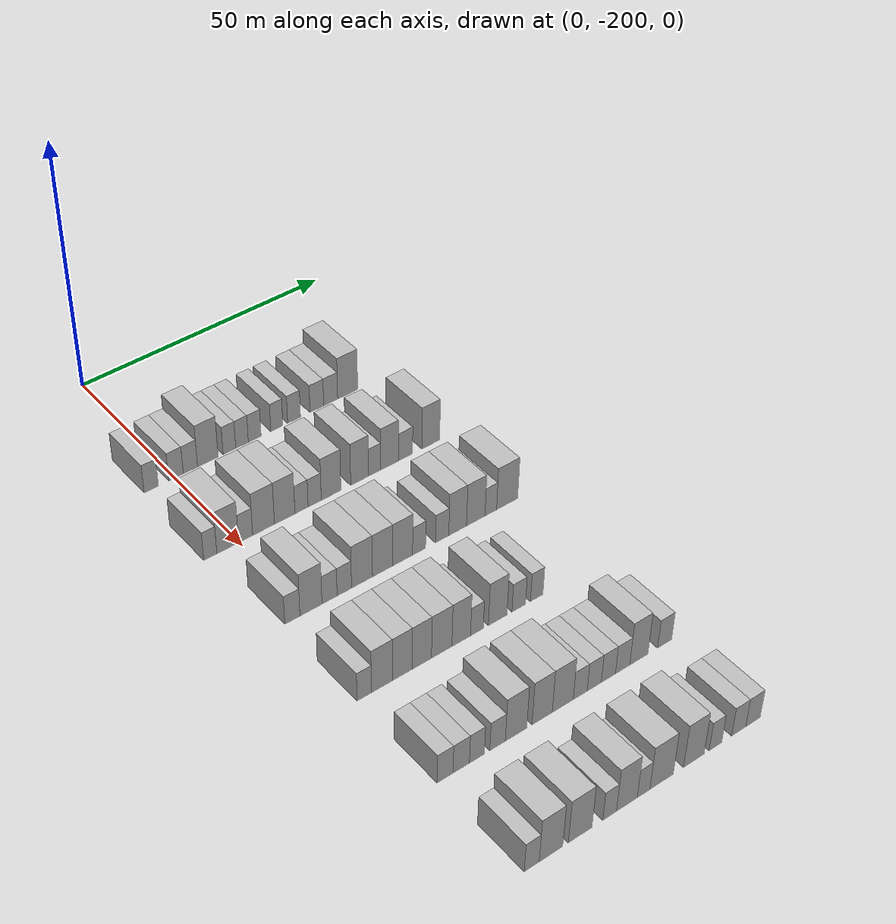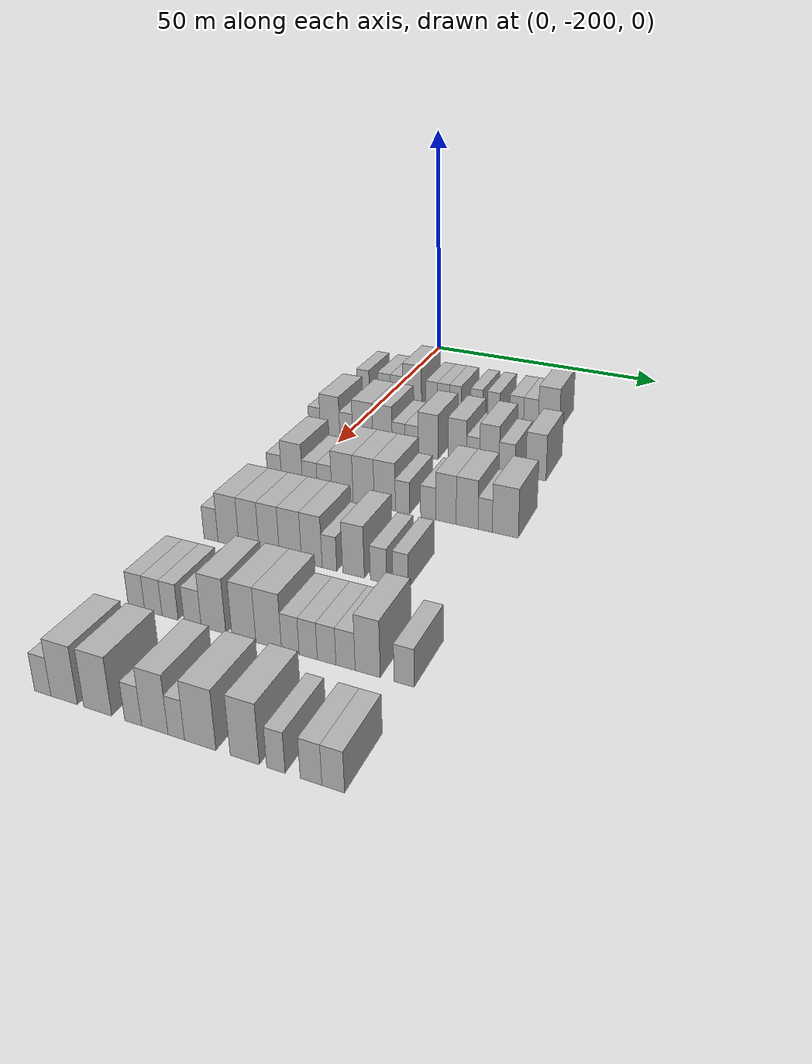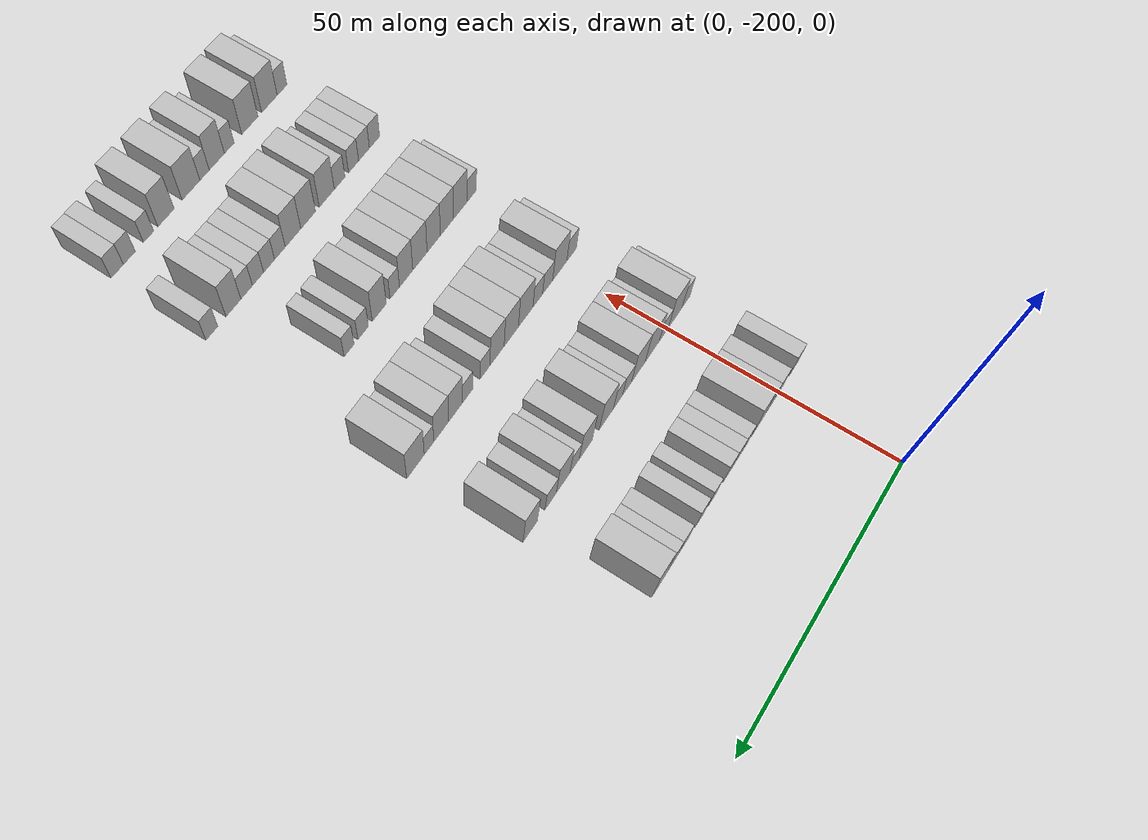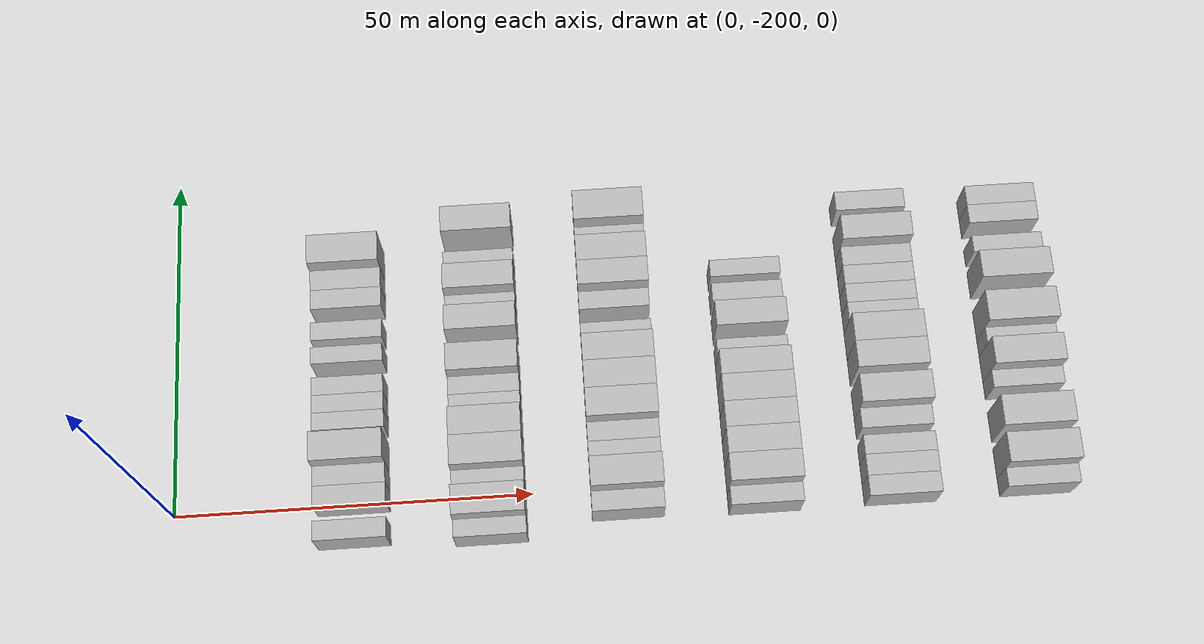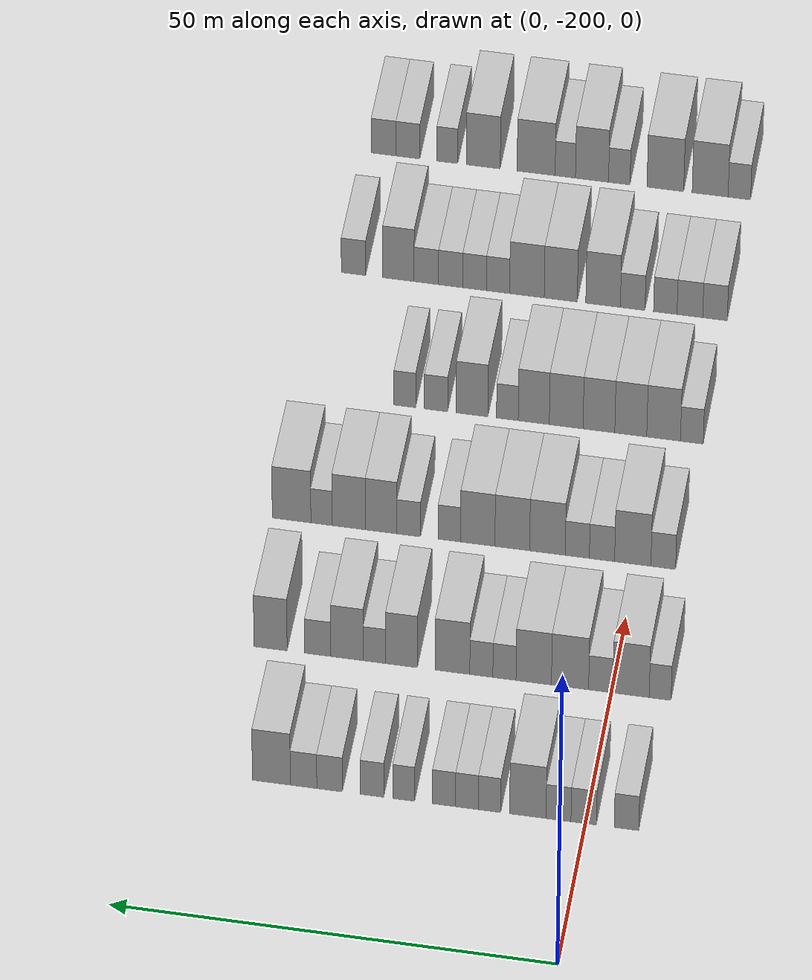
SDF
<sdf version="1.6">
 <world name="default">
  <model name="building_35">
   <static>1</static>
   <pose>25.0000 -204.6063 0 0.000000 0.000000 0.000000</pose>
   <link name="link">
    <pose>0 0 3.00 0 0 0</pose>
    <collision name="collision"><geometry><box><size>10.0000 2.7494 6.0000</size></box></geometry></collision>
    <visual name="visual">
     <cast_shadows>0</cast_shadows>
     <geometry><box><size>10.0000 2.7494 6.0000</size></box></geometry>
     <material>
      <script>
       <uri>model://HANNAS_wall/materials/scripts</uri>
       <uri>model://HANNAS_wall/materials/textures</uri>
       <name>vrc/HANNAS_wall</name>
      </script>
     </material>
    </visual>
   </link>
  </model>
  <model name="building_36">
   <static>1</static>
   <pose>25.0000 -199.8034 0 0.000000 0.000000 0.000000</pose>
   <link name="link">
    <pose>0 0 3.00 0 0 0</pose>
    <collision name="collision"><geometry><box><size>10.0000 2.8564 6.0000</size></box></geometry></collision>
    <visual name="visual">
     <cast_shadows>0</cast_shadows>
     <geometry><box><size>10.0000 2.8564 6.0000</size></box></geometry>
     <material>
      <script>
       <uri>model://HANNAS_wall/materials/scripts</uri>
       <uri>model://HANNAS_wall/materials/textures</uri>
       <name>vrc/HANNAS_wall</name>
      </script>
     </material>
    </visual>
   </link>
  </model>
  <model name="building_37">
   <static>1</static>
   <pose>25.0000 -196.9749 0 0.000000 0.000000 0.000000</pose>
   <link name="link">
    <pose>0 0 3.00 0 0 0</pose>
    <collision name="collision"><geometry><box><size>10.0000 2.8006 6.0000</size></box></geometry></collision>
    <visual name="visual">
     <cast_shadows>0</cast_shadows>
     <geometry><box><size>10.0000 2.8006 6.0000</size></box></geometry>
     <material>
      <script>
       <uri>model://HANNAS_wall/materials/scripts</uri>
       <uri>model://HANNAS_wall/materials/textures</uri>
       <name>vrc/HANNAS_wall</name>
      </script>
     </material>
    </visual>
   </link>
  </model>
  <model name="building_38">
   <static>1</static>
   <pose>25.0000 -193.5303 0 0.000000 0.000000 0.000000</pose>
   <link name="link">
    <pose>0 0 4.50 0 0 0</pose>
    <collision name="collision"><geometry><box><size>10.0000 4.0886 9.0000</size></box></geometry></collision>
    <visual name="visual">
     <cast_shadows>0</cast_shadows>
     <geometry><box><size>10.0000 4.0886 9.0000</size></box></geometry>
     <material>
      <script>
       <uri>model://HANNAS_wall/materials/scripts</uri>
       <uri>model://HANNAS_wall/materials/textures</uri>
       <name>vrc/HANNAS_wall</name>
      </script>
     </material>
    </visual>
   </link>
  </model>
  <model name="building_39">
   <static>1</static>
   <pose>25.0000 -189.2221 0 0.000000 0.000000 0.000000</pose>
   <link name="link">
    <pose>0 0 3.00 0 0 0</pose>
    <collision name="collision"><geometry><box><size>10.0000 2.5278 6.0000</size></box></geometry></collision>
    <visual name="visual">
     <cast_shadows>0</cast_shadows>
     <geometry><box><size>10.0000 2.5278 6.0000</size></box></geometry>
     <material>
      <script>
       <uri>model://HANNAS_wall/materials/scripts</uri>
       <uri>model://HANNAS_wall/materials/textures</uri>
       <name>vrc/HANNAS_wall</name>
      </script>
     </material>
    </visual>
   </link>
  </model>
  <model name="building_40">
   <static>1</static>
   <pose>25.0000 -186.6805 0 0.000000 0.000000 0.000000</pose>
   <link name="link">
    <pose>0 0 3.00 0 0 0</pose>
    <collision name="collision"><geometry><box><size>10.0000 2.5553 6.0000</size></box></geometry></collision>
    <visual name="visual">
     <cast_shadows>0</cast_shadows>
     <geometry><box><size>10.0000 2.5553 6.0000</size></box></geometry>
     <material>
      <script>
       <uri>model://HANNAS_wall/materials/scripts</uri>
       <uri>model://HANNAS_wall/materials/textures</uri>
       <name>vrc/HANNAS_wall</name>
      </script>
     </material>
    </visual>
   </link>
  </model>
  <model name="building_41">
   <static>1</static>
   <pose>25.0000 -184.1027 0 0.000000 0.000000 0.000000</pose>
   <link name="link">
    <pose>0 0 3.00 0 0 0</pose>
    <collision name="collision"><geometry><box><size>10.0000 2.6003 6.0000</size></box></geometry></collision>
    <visual name="visual">
     <cast_shadows>0</cast_shadows>
     <geometry><box><size>10.0000 2.6003 6.0000</size></box></geometry>
     <material>
      <script>
       <uri>model://HANNAS_wall/materials/scripts</uri>
       <uri>model://HANNAS_wall/materials/textures</uri>
       <name>vrc/HANNAS_wall</name>
      </script>
     </material>
    </visual>
   </link>
  </model>
  <model name="building_42">
   <static>1</static>
   <pose>25.0000 -179.5608 0 0.000000 0.000000 0.000000</pose>
   <link name="link">
    <pose>0 0 3.00 0 0 0</pose>
    <collision name="collision"><geometry><box><size>10.0000 2.4836 6.0000</size></box></geometry></collision>
    <visual name="visual">
     <cast_shadows>0</cast_shadows>
     <geometry><box><size>10.0000 2.4836 6.0000</size></box></geometry>
     <material>
      <script>
       <uri>model://HANNAS_wall/materials/scripts</uri>
       <uri>model://HANNAS_wall/materials/textures</uri>
       <name>vrc/HANNAS_wall</name>
      </script>
     </material>
    </visual>
   </link>
  </model>
  <model name="building_43">
   <static>1</static>
   <pose>25.0000 -175.9836 0 0.000000 0.000000 0.000000</pose>
   <link name="link">
    <pose>0 0 3.00 0 0 0</pose>
    <collision name="collision"><geometry><box><size>10.0000 2.6708 6.0000</size></box></geometry></collision>
    <visual name="visual">
     <cast_shadows>0</cast_shadows>
     <geometry><box><size>10.0000 2.6708 6.0000</size></box></geometry>
     <material>
      <script>
       <uri>model://HANNAS_wall/materials/scripts</uri>
       <uri>model://HANNAS_wall/materials/textures</uri>
       <name>vrc/HANNAS_wall</name>
      </script>
     </material>
    </visual>
   </link>
  </model>
  <model name="building_44">
   <static>1</static>
   <pose>25.0000 -171.2106 0 0.000000 0.000000 0.000000</pose>
   <link name="link">
    <pose>0 0 3.00 0 0 0</pose>
    <collision name="collision"><geometry><box><size>10.0000 2.8751 6.0000</size></box></geometry></collision>
    <visual name="visual">
     <cast_shadows>0</cast_shadows>
     <geometry><box><size>10.0000 2.8751 6.0000</size></box></geometry>
     <material>
      <script>
       <uri>model://HANNAS_wall/materials/scripts</uri>
       <uri>model://HANNAS_wall/materials/textures</uri>
       <name>vrc/HANNAS_wall</name>
      </script>
     </material>
    </visual>
   </link>
  </model>
  <model name="building_45">
   <static>1</static>
   <pose>25.0000 -168.2817 0 0.000000 0.000000 0.000000</pose>
   <link name="link">
    <pose>0 0 3.00 0 0 0</pose>
    <collision name="collision"><geometry><box><size>10.0000 2.9826 6.0000</size></box></geometry></collision>
    <visual name="visual">
     <cast_shadows>0</cast_shadows>
     <geometry><box><size>10.0000 2.9826 6.0000</size></box></geometry>
     <material>
      <script>
       <uri>model://HANNAS_wall/materials/scripts</uri>
       <uri>model://HANNAS_wall/materials/textures</uri>
       <name>vrc/HANNAS_wall</name>
      </script>
     </material>
    </visual>
   </link>
  </model>
  <model name="building_46">
   <static>1</static>
   <pose>25.0000 -164.6508 0 0.000000 0.000000 0.000000</pose>
   <link name="link">
    <pose>0 0 4.50 0 0 0</pose>
    <collision name="collision"><geometry><box><size>10.0000 4.2792 9.0000</size></box></geometry></collision>
    <visual name="visual">
     <cast_shadows>0</cast_shadows>
     <geometry><box><size>10.0000 4.2792 9.0000</size></box></geometry>
     <material>
      <script>
       <uri>model://HANNAS_wall/materials/scripts</uri>
       <uri>model://HANNAS_wall/materials/textures</uri>
       <name>vrc/HANNAS_wall</name>
      </script>
     </material>
    </visual>
   </link>
  </model>
  <model name="building_206">
   <static>1</static>
   <pose>44.0000 -205.5097 0 0.000000 0.000000 0.000000</pose>
   <link name="link">
    <pose>0 0 3.00 0 0 0</pose>
    <collision name="collision"><geometry><box><size>10.0000 2.4755 6.0000</size></box></geometry></collision>
    <visual name="visual">
     <cast_shadows>0</cast_shadows>
     <geometry><box><size>10.0000 2.4755 6.0000</size></box></geometry>
     <material>
      <script>
       <uri>model://HANNAS_wall/materials/scripts</uri>
       <uri>model://HANNAS_wall/materials/textures</uri>
       <name>vrc/HANNAS_wall</name>
      </script>
     </material>
    </visual>
   </link>
  </model>
  <model name="building_207">
   <static>1</static>
   <pose>44.0000 -202.2036 0 0.000000 0.000000 0.000000</pose>
   <link name="link">
    <pose>0 0 4.50 0 0 0</pose>
    <collision name="collision"><geometry><box><size>10.0000 4.1369 9.0000</size></box></geometry></collision>
    <visual name="visual">
     <cast_shadows>0</cast_shadows>
     <geometry><box><size>10.0000 4.1369 9.0000</size></box></geometry>
     <material>
      <script>
       <uri>model://HANNAS_wall/materials/scripts</uri>
       <uri>model://HANNAS_wall/materials/textures</uri>
       <name>vrc/HANNAS_wall</name>
      </script>
     </material>
    </visual>
   </link>
  </model>
  <model name="building_208">
   <static>1</static>
   <pose>44.0000 -198.7699 0 0.000000 0.000000 0.000000</pose>
   <link name="link">
    <pose>0 0 3.00 0 0 0</pose>
    <collision name="collision"><geometry><box><size>10.0000 2.7305 6.0000</size></box></geometry></collision>
    <visual name="visual">
     <cast_shadows>0</cast_shadows>
     <geometry><box><size>10.0000 2.7305 6.0000</size></box></geometry>
     <material>
      <script>
       <uri>model://HANNAS_wall/materials/scripts</uri>
       <uri>model://HANNAS_wall/materials/textures</uri>
       <name>vrc/HANNAS_wall</name>
      </script>
     </material>
    </visual>
   </link>
  </model>
  <model name="building_209">
   <static>1</static>
   <pose>44.0000 -195.2941 0 0.000000 0.000000 0.000000</pose>
   <link name="link">
    <pose>0 0 4.50 0 0 0</pose>
    <collision name="collision"><geometry><box><size>10.0000 4.2212 9.0000</size></box></geometry></collision>
    <visual name="visual">
     <cast_shadows>0</cast_shadows>
     <geometry><box><size>10.0000 4.2212 9.0000</size></box></geometry>
     <material>
      <script>
       <uri>model://HANNAS_wall/materials/scripts</uri>
       <uri>model://HANNAS_wall/materials/textures</uri>
       <name>vrc/HANNAS_wall</name>
      </script>
     </material>
    </visual>
   </link>
  </model>
  <model name="building_210">
   <static>1</static>
   <pose>44.0000 -191.1733 0 0.000000 0.000000 0.000000</pose>
   <link name="link">
    <pose>0 0 4.50 0 0 0</pose>
    <collision name="collision"><geometry><box><size>10.0000 4.0203 9.0000</size></box></geometry></collision>
    <visual name="visual">
     <cast_shadows>0</cast_shadows>
     <geometry><box><size>10.0000 4.0203 9.0000</size></box></geometry>
     <material>
      <script>
       <uri>model://HANNAS_wall/materials/scripts</uri>
       <uri>model://HANNAS_wall/materials/textures</uri>
       <name>vrc/HANNAS_wall</name>
      </script>
     </material>
    </visual>
   </link>
  </model>
  <model name="building_211">
   <static>1</static>
   <pose>44.0000 -187.8496 0 0.000000 0.000000 0.000000</pose>
   <link name="link">
    <pose>0 0 3.00 0 0 0</pose>
    <collision name="collision"><geometry><box><size>10.0000 2.6270 6.0000</size></box></geometry></collision>
    <visual name="visual">
     <cast_shadows>0</cast_shadows>
     <geometry><box><size>10.0000 2.6270 6.0000</size></box></geometry>
     <material>
      <script>
       <uri>model://HANNAS_wall/materials/scripts</uri>
       <uri>model://HANNAS_wall/materials/textures</uri>
       <name>vrc/HANNAS_wall</name>
      </script>
     </material>
    </visual>
   </link>
  </model>
  <model name="building_212">
   <static>1</static>
   <pose>44.0000 -185.2249 0 0.000000 0.000000 0.000000</pose>
   <link name="link">
    <pose>0 0 3.00 0 0 0</pose>
    <collision name="collision"><geometry><box><size>10.0000 2.6224 6.0000</size></box></geometry></collision>
    <visual name="visual">
     <cast_shadows>0</cast_shadows>
     <geometry><box><size>10.0000 2.6224 6.0000</size></box></geometry>
     <material>
      <script>
       <uri>model://HANNAS_wall/materials/scripts</uri>
       <uri>model://HANNAS_wall/materials/textures</uri>
       <name>vrc/HANNAS_wall</name>
      </script>
     </material>
    </visual>
   </link>
  </model>
  <model name="building_213">
   <static>1</static>
   <pose>44.0000 -181.9339 0 0.000000 0.000000 0.000000</pose>
   <link name="link">
    <pose>0 0 4.50 0 0 0</pose>
    <collision name="collision"><geometry><box><size>10.0000 3.9596 9.0000</size></box></geometry></collision>
    <visual name="visual">
     <cast_shadows>0</cast_shadows>
     <geometry><box><size>10.0000 3.9596 9.0000</size></box></geometry>
     <material>
      <script>
       <uri>model://HANNAS_wall/materials/scripts</uri>
       <uri>model://HANNAS_wall/materials/textures</uri>
       <name>vrc/HANNAS_wall</name>
      </script>
     </material>
    </visual>
   </link>
  </model>
  <model name="building_214">
   <static>1</static>
   <pose>44.0000 -176.1424 0 0.000000 0.000000 0.000000</pose>
   <link name="link">
    <pose>0 0 4.50 0 0 0</pose>
    <collision name="collision"><geometry><box><size>10.0000 3.6235 9.0000</size></box></geometry></collision>
    <visual name="visual">
     <cast_shadows>0</cast_shadows>
     <geometry><box><size>10.0000 3.6235 9.0000</size></box></geometry>
     <material>
      <script>
       <uri>model://HANNAS_wall/materials/scripts</uri>
       <uri>model://HANNAS_wall/materials/textures</uri>
       <name>vrc/HANNAS_wall</name>
      </script>
     </material>
    </visual>
   </link>
  </model>
  <model name="building_215">
   <static>1</static>
   <pose>44.0000 -173.0582 0 0.000000 0.000000 0.000000</pose>
   <link name="link">
    <pose>0 0 3.00 0 0 0</pose>
    <collision name="collision"><geometry><box><size>10.0000 2.5449 6.0000</size></box></geometry></collision>
    <visual name="visual">
     <cast_shadows>0</cast_shadows>
     <geometry><box><size>10.0000 2.5449 6.0000</size></box></geometry>
     <material>
      <script>
       <uri>model://HANNAS_wall/materials/scripts</uri>
       <uri>model://HANNAS_wall/materials/textures</uri>
       <name>vrc/HANNAS_wall</name>
      </script>
     </material>
    </visual>
   </link>
  </model>
  <model name="building_216">
   <static>1</static>
   <pose>44.0000 -169.9406 0 0.000000 0.000000 0.000000</pose>
   <link name="link">
    <pose>0 0 4.50 0 0 0</pose>
    <collision name="collision"><geometry><box><size>10.0000 3.6903 9.0000</size></box></geometry></collision>
    <visual name="visual">
     <cast_shadows>0</cast_shadows>
     <geometry><box><size>10.0000 3.6903 9.0000</size></box></geometry>
     <material>
      <script>
       <uri>model://HANNAS_wall/materials/scripts</uri>
       <uri>model://HANNAS_wall/materials/textures</uri>
       <name>vrc/HANNAS_wall</name>
      </script>
     </material>
    </visual>
   </link>
  </model>
  <model name="building_217">
   <static>1</static>
   <pose>44.0000 -166.6025 0 0.000000 0.000000 0.000000</pose>
   <link name="link">
    <pose>0 0 3.00 0 0 0</pose>
    <collision name="collision"><geometry><box><size>10.0000 2.9859 6.0000</size></box></geometry></collision>
    <visual name="visual">
     <cast_shadows>0</cast_shadows>
     <geometry><box><size>10.0000 2.9859 6.0000</size></box></geometry>
     <material>
      <script>
       <uri>model://HANNAS_wall/materials/scripts</uri>
       <uri>model://HANNAS_wall/materials/textures</uri>
       <name>vrc/HANNAS_wall</name>
      </script>
     </material>
    </visual>
   </link>
  </model>
  <model name="building_218">
   <static>1</static>
   <pose>44.0000 -161.2229 0 0.000000 0.000000 0.000000</pose>
   <link name="link">
    <pose>0 0 4.50 0 0 0</pose>
    <collision name="collision"><geometry><box><size>10.0000 3.7732 9.0000</size></box></geometry></collision>
    <visual name="visual">
     <cast_shadows>0</cast_shadows>
     <geometry><box><size>10.0000 3.7732 9.0000</size></box></geometry>
     <material>
      <script>
       <uri>model://HANNAS_wall/materials/scripts</uri>
       <uri>model://HANNAS_wall/materials/textures</uri>
       <name>vrc/HANNAS_wall</name>
      </script>
     </material>
    </visual>
   </link>
  </model>
  <model name="building_382">
   <static>1</static>
   <pose>63.0000 -202.9997 0 0.000000 0.000000 0.000000</pose>
   <link name="link">
    <pose>0 0 3.00 0 0 0</pose>
    <collision name="collision"><geometry><box><size>10.0000 2.8282 6.0000</size></box></geometry></collision>
    <visual name="visual">
     <cast_shadows>0</cast_shadows>
     <geometry><box><size>10.0000 2.8282 6.0000</size></box></geometry>
     <material>
      <script>
       <uri>model://HANNAS_wall/materials/scripts</uri>
       <uri>model://HANNAS_wall/materials/textures</uri>
       <name>vrc/HANNAS_wall</name>
      </script>
     </material>
    </visual>
   </link>
  </model>
  <model name="building_383">
   <static>1</static>
   <pose>63.0000 -199.5063 0 0.000000 0.000000 0.000000</pose>
   <link name="link">
    <pose>0 0 4.50 0 0 0</pose>
    <collision name="collision"><geometry><box><size>10.0000 4.1586 9.0000</size></box></geometry></collision>
    <visual name="visual">
     <cast_shadows>0</cast_shadows>
     <geometry><box><size>10.0000 4.1586 9.0000</size></box></geometry>
     <material>
      <script>
       <uri>model://HANNAS_wall/materials/scripts</uri>
       <uri>model://HANNAS_wall/materials/textures</uri>
       <name>vrc/HANNAS_wall</name>
      </script>
     </material>
    </visual>
   </link>
  </model>
  <model name="building_384">
   <static>1</static>
   <pose>63.0000 -195.9821 0 0.000000 0.000000 0.000000</pose>
   <link name="link">
    <pose>0 0 3.00 0 0 0</pose>
    <collision name="collision"><geometry><box><size>10.0000 2.8899 6.0000</size></box></geometry></collision>
    <visual name="visual">
     <cast_shadows>0</cast_shadows>
     <geometry><box><size>10.0000 2.8899 6.0000</size></box></geometry>
     <material>
      <script>
       <uri>model://HANNAS_wall/materials/scripts</uri>
       <uri>model://HANNAS_wall/materials/textures</uri>
       <name>vrc/HANNAS_wall</name>
      </script>
     </material>
    </visual>
   </link>
  </model>
  <model name="building_385">
   <static>1</static>
   <pose>63.0000 -193.1538 0 0.000000 0.000000 0.000000</pose>
   <link name="link">
    <pose>0 0 3.00 0 0 0</pose>
    <collision name="collision"><geometry><box><size>10.0000 2.7665 6.0000</size></box></geometry></collision>
    <visual name="visual">
     <cast_shadows>0</cast_shadows>
     <geometry><box><size>10.0000 2.7665 6.0000</size></box></geometry>
     <material>
      <script>
       <uri>model://HANNAS_wall/materials/scripts</uri>
       <uri>model://HANNAS_wall/materials/textures</uri>
       <name>vrc/HANNAS_wall</name>
      </script>
     </material>
    </visual>
   </link>
  </model>
  <model name="building_386">
   <static>1</static>
   <pose>63.0000 -189.7286 0 0.000000 0.000000 0.000000</pose>
   <link name="link">
    <pose>0 0 4.50 0 0 0</pose>
    <collision name="collision"><geometry><box><size>10.0000 4.0840 9.0000</size></box></geometry></collision>
    <visual name="visual">
     <cast_shadows>0</cast_shadows>
     <geometry><box><size>10.0000 4.0840 9.0000</size></box></geometry>
     <material>
      <script>
       <uri>model://HANNAS_wall/materials/scripts</uri>
       <uri>model://HANNAS_wall/materials/textures</uri>
       <name>vrc/HANNAS_wall</name>
      </script>
     </material>
    </visual>
   </link>
  </model>
  <model name="building_387">
   <static>1</static>
   <pose>63.0000 -185.6949 0 0.000000 0.000000 0.000000</pose>
   <link name="link">
    <pose>0 0 4.50 0 0 0</pose>
    <collision name="collision"><geometry><box><size>10.0000 3.9833 9.0000</size></box></geometry></collision>
    <visual name="visual">
     <cast_shadows>0</cast_shadows>
     <geometry><box><size>10.0000 3.9833 9.0000</size></box></geometry>
     <material>
      <script>
       <uri>model://HANNAS_wall/materials/scripts</uri>
       <uri>model://HANNAS_wall/materials/textures</uri>
       <name>vrc/HANNAS_wall</name>
      </script>
     </material>
    </visual>
   </link>
  </model>
  <model name="building_388">
   <static>1</static>
   <pose>63.0000 -181.7345 0 0.000000 0.000000 0.000000</pose>
   <link name="link">
    <pose>0 0 4.50 0 0 0</pose>
    <collision name="collision"><geometry><box><size>10.0000 3.9375 9.0000</size></box></geometry></collision>
    <visual name="visual">
     <cast_shadows>0</cast_shadows>
     <geometry><box><size>10.0000 3.9375 9.0000</size></box></geometry>
     <material>
      <script>
       <uri>model://HANNAS_wall/materials/scripts</uri>
       <uri>model://HANNAS_wall/materials/textures</uri>
       <name>vrc/HANNAS_wall</name>
      </script>
     </material>
    </visual>
   </link>
  </model>
  <model name="building_389">
   <static>1</static>
   <pose>63.0000 -178.4641 0 0.000000 0.000000 0.000000</pose>
   <link name="link">
    <pose>0 0 3.00 0 0 0</pose>
    <collision name="collision"><geometry><box><size>10.0000 2.6033 6.0000</size></box></geometry></collision>
    <visual name="visual">
     <cast_shadows>0</cast_shadows>
     <geometry><box><size>10.0000 2.6033 6.0000</size></box></geometry>
     <material>
      <script>
       <uri>model://HANNAS_wall/materials/scripts</uri>
       <uri>model://HANNAS_wall/materials/textures</uri>
       <name>vrc/HANNAS_wall</name>
      </script>
     </material>
    </visual>
   </link>
  </model>
  <model name="building_390">
   <static>1</static>
   <pose>63.0000 -173.8086 0 0.000000 0.000000 0.000000</pose>
   <link name="link">
    <pose>0 0 3.00 0 0 0</pose>
    <collision name="collision"><geometry><box><size>10.0000 2.7077 6.0000</size></box></geometry></collision>
    <visual name="visual">
     <cast_shadows>0</cast_shadows>
     <geometry><box><size>10.0000 2.7077 6.0000</size></box></geometry>
     <material>
      <script>
       <uri>model://HANNAS_wall/materials/scripts</uri>
       <uri>model://HANNAS_wall/materials/textures</uri>
       <name>vrc/HANNAS_wall</name>
      </script>
     </material>
    </visual>
   </link>
  </model>
  <model name="building_391">
   <static>1</static>
   <pose>63.0000 -170.6334 0 0.000000 0.000000 0.000000</pose>
   <link name="link">
    <pose>0 0 4.50 0 0 0</pose>
    <collision name="collision"><geometry><box><size>10.0000 3.6428 9.0000</size></box></geometry></collision>
    <visual name="visual">
     <cast_shadows>0</cast_shadows>
     <geometry><box><size>10.0000 3.6428 9.0000</size></box></geometry>
     <material>
      <script>
       <uri>model://HANNAS_wall/materials/scripts</uri>
       <uri>model://HANNAS_wall/materials/textures</uri>
       <name>vrc/HANNAS_wall</name>
      </script>
     </material>
    </visual>
   </link>
  </model>
  <model name="building_392">
   <static>1</static>
   <pose>63.0000 -166.8922 0 0.000000 0.000000 0.000000</pose>
   <link name="link">
    <pose>0 0 4.50 0 0 0</pose>
    <collision name="collision"><geometry><box><size>10.0000 3.8395 9.0000</size></box></geometry></collision>
    <visual name="visual">
     <cast_shadows>0</cast_shadows>
     <geometry><box><size>10.0000 3.8395 9.0000</size></box></geometry>
     <material>
      <script>
       <uri>model://HANNAS_wall/materials/scripts</uri>
       <uri>model://HANNAS_wall/materials/textures</uri>
       <name>vrc/HANNAS_wall</name>
      </script>
     </material>
    </visual>
   </link>
  </model>
  <model name="building_393">
   <static>1</static>
   <pose>63.0000 -163.7552 0 0.000000 0.000000 0.000000</pose>
   <link name="link">
    <pose>0 0 3.00 0 0 0</pose>
    <collision name="collision"><geometry><box><size>10.0000 2.4346 6.0000</size></box></geometry></collision>
    <visual name="visual">
     <cast_shadows>0</cast_shadows>
     <geometry><box><size>10.0000 2.4346 6.0000</size></box></geometry>
     <material>
      <script>
       <uri>model://HANNAS_wall/materials/scripts</uri>
       <uri>model://HANNAS_wall/materials/textures</uri>
       <name>vrc/HANNAS_wall</name>
      </script>
     </material>
    </visual>
   </link>
  </model>
  <model name="building_394">
   <static>1</static>
   <pose>63.0000 -160.3153 0 0.000000 0.000000 0.000000</pose>
   <link name="link">
    <pose>0 0 4.50 0 0 0</pose>
    <collision name="collision"><geometry><box><size>10.0000 4.4451 9.0000</size></box></geometry></collision>
    <visual name="visual">
     <cast_shadows>0</cast_shadows>
     <geometry><box><size>10.0000 4.4451 9.0000</size></box></geometry>
     <material>
      <script>
       <uri>model://HANNAS_wall/materials/scripts</uri>
       <uri>model://HANNAS_wall/materials/textures</uri>
       <name>vrc/HANNAS_wall</name>
      </script>
     </material>
    </visual>
   </link>
  </model>
  <model name="building_558">
   <static>1</static>
   <pose>82.0000 -203.4405 0 0.000000 0.000000 0.000000</pose>
   <link name="link">
    <pose>0 0 3.00 0 0 0</pose>
    <collision name="collision"><geometry><box><size>10.0000 2.6350 6.0000</size></box></geometry></collision>
    <visual name="visual">
     <cast_shadows>0</cast_shadows>
     <geometry><box><size>10.0000 2.6350 6.0000</size></box></geometry>
     <material>
      <script>
       <uri>model://HANNAS_wall/materials/scripts</uri>
       <uri>model://HANNAS_wall/materials/textures</uri>
       <name>vrc/HANNAS_wall</name>
      </script>
     </material>
    </visual>
   </link>
  </model>
  <model name="building_559">
   <static>1</static>
   <pose>82.0000 -200.1745 0 0.000000 0.000000 0.000000</pose>
   <link name="link">
    <pose>0 0 4.50 0 0 0</pose>
    <collision name="collision"><geometry><box><size>10.0000 3.8970 9.0000</size></box></geometry></collision>
    <visual name="visual">
     <cast_shadows>0</cast_shadows>
     <geometry><box><size>10.0000 3.8970 9.0000</size></box></geometry>
     <material>
      <script>
       <uri>model://HANNAS_wall/materials/scripts</uri>
       <uri>model://HANNAS_wall/materials/textures</uri>
       <name>vrc/HANNAS_wall</name>
      </script>
     </material>
    </visual>
   </link>
  </model>
  <model name="building_560">
   <static>1</static>
   <pose>82.0000 -196.3777 0 0.000000 0.000000 0.000000</pose>
   <link name="link">
    <pose>0 0 4.50 0 0 0</pose>
    <collision name="collision"><geometry><box><size>10.0000 3.6964 9.0000</size></box></geometry></collision>
    <visual name="visual">
     <cast_shadows>0</cast_shadows>
     <geometry><box><size>10.0000 3.6964 9.0000</size></box></geometry>
     <material>
      <script>
       <uri>model://HANNAS_wall/materials/scripts</uri>
       <uri>model://HANNAS_wall/materials/textures</uri>
       <name>vrc/HANNAS_wall</name>
      </script>
     </material>
    </visual>
   </link>
  </model>
  <model name="building_561">
   <static>1</static>
   <pose>82.0000 -192.6930 0 0.000000 0.000000 0.000000</pose>
   <link name="link">
    <pose>0 0 4.50 0 0 0</pose>
    <collision name="collision"><geometry><box><size>10.0000 3.6731 9.0000</size></box></geometry></collision>
    <visual name="visual">
     <cast_shadows>0</cast_shadows>
     <geometry><box><size>10.0000 3.6731 9.0000</size></box></geometry>
     <material>
      <script>
       <uri>model://HANNAS_wall/materials/scripts</uri>
       <uri>model://HANNAS_wall/materials/textures</uri>
       <name>vrc/HANNAS_wall</name>
      </script>
     </material>
    </visual>
   </link>
  </model>
  <model name="building_562">
   <static>1</static>
   <pose>82.0000 -188.9013 0 0.000000 0.000000 0.000000</pose>
   <link name="link">
    <pose>0 0 4.50 0 0 0</pose>
    <collision name="collision"><geometry><box><size>10.0000 3.9103 9.0000</size></box></geometry></collision>
    <visual name="visual">
     <cast_shadows>0</cast_shadows>
     <geometry><box><size>10.0000 3.9103 9.0000</size></box></geometry>
     <material>
      <script>
       <uri>model://HANNAS_wall/materials/scripts</uri>
       <uri>model://HANNAS_wall/materials/textures</uri>
       <name>vrc/HANNAS_wall</name>
      </script>
     </material>
    </visual>
   </link>
  </model>
  <model name="building_563">
   <static>1</static>
   <pose>82.0000 -185.1446 0 0.000000 0.000000 0.000000</pose>
   <link name="link">
    <pose>0 0 4.50 0 0 0</pose>
    <collision name="collision"><geometry><box><size>10.0000 3.6032 9.0000</size></box></geometry></collision>
    <visual name="visual">
     <cast_shadows>0</cast_shadows>
     <geometry><box><size>10.0000 3.6032 9.0000</size></box></geometry>
     <material>
      <script>
       <uri>model://HANNAS_wall/materials/scripts</uri>
       <uri>model://HANNAS_wall/materials/textures</uri>
       <name>vrc/HANNAS_wall</name>
      </script>
     </material>
    </visual>
   </link>
  </model>
  <model name="building_564">
   <static>1</static>
   <pose>82.0000 -182.0852 0 0.000000 0.000000 0.000000</pose>
   <link name="link">
    <pose>0 0 3.00 0 0 0</pose>
    <collision name="collision"><geometry><box><size>10.0000 2.5156 6.0000</size></box></geometry></collision>
    <visual name="visual">
     <cast_shadows>0</cast_shadows>
     <geometry><box><size>10.0000 2.5156 6.0000</size></box></geometry>
     <material>
      <script>
       <uri>model://HANNAS_wall/materials/scripts</uri>
       <uri>model://HANNAS_wall/materials/textures</uri>
       <name>vrc/HANNAS_wall</name>
      </script>
     </material>
    </visual>
   </link>
  </model>
  <model name="building_565">
   <static>1</static>
   <pose>82.0000 -177.9901 0 0.000000 0.000000 0.000000</pose>
   <link name="link">
    <pose>0 0 4.50 0 0 0</pose>
    <collision name="collision"><geometry><box><size>10.0000 3.6747 9.0000</size></box></geometry></collision>
    <visual name="visual">
     <cast_shadows>0</cast_shadows>
     <geometry><box><size>10.0000 3.6747 9.0000</size></box></geometry>
     <material>
      <script>
       <uri>model://HANNAS_wall/materials/scripts</uri>
       <uri>model://HANNAS_wall/materials/textures</uri>
       <name>vrc/HANNAS_wall</name>
      </script>
     </material>
    </visual>
   </link>
  </model>
  <model name="building_566">
   <static>1</static>
   <pose>82.0000 -173.7946 0 0.000000 0.000000 0.000000</pose>
   <link name="link">
    <pose>0 0 3.00 0 0 0</pose>
    <collision name="collision"><geometry><box><size>10.0000 2.7164 6.0000</size></box></geometry></collision>
    <visual name="visual">
     <cast_shadows>0</cast_shadows>
     <geometry><box><size>10.0000 2.7164 6.0000</size></box></geometry>
     <material>
      <script>
       <uri>model://HANNAS_wall/materials/scripts</uri>
       <uri>model://HANNAS_wall/materials/textures</uri>
       <name>vrc/HANNAS_wall</name>
      </script>
     </material>
    </visual>
   </link>
  </model>
  <model name="building_567">
   <static>1</static>
   <pose>82.0000 -170.1763 0 0.000000 0.000000 0.000000</pose>
   <link name="link">
    <pose>0 0 3.00 0 0 0</pose>
    <collision name="collision"><geometry><box><size>10.0000 2.5202 6.0000</size></box></geometry></collision>
    <visual name="visual">
     <cast_shadows>0</cast_shadows>
     <geometry><box><size>10.0000 2.5202 6.0000</size></box></geometry>
     <material>
      <script>
       <uri>model://HANNAS_wall/materials/scripts</uri>
       <uri>model://HANNAS_wall/materials/textures</uri>
       <name>vrc/HANNAS_wall</name>
      </script>
     </material>
    </visual>
   </link>
  </model>
  <model name="building_710">
   <static>1</static>
   <pose>101.0000 -203.3112 0 0.000000 0.000000 0.000000</pose>
   <link name="link">
    <pose>0 0 3.00 0 0 0</pose>
    <collision name="collision"><geometry><box><size>10.0000 2.8653 6.0000</size></box></geometry></collision>
    <visual name="visual">
     <cast_shadows>0</cast_shadows>
     <geometry><box><size>10.0000 2.8653 6.0000</size></box></geometry>
     <material>
      <script>
       <uri>model://HANNAS_wall/materials/scripts</uri>
       <uri>model://HANNAS_wall/materials/textures</uri>
       <name>vrc/HANNAS_wall</name>
      </script>
     </material>
    </visual>
   </link>
  </model>
  <model name="building_711">
   <static>1</static>
   <pose>101.0000 -200.3807 0 0.000000 0.000000 0.000000</pose>
   <link name="link">
    <pose>0 0 3.00 0 0 0</pose>
    <collision name="collision"><geometry><box><size>10.0000 2.9957 6.0000</size></box></geometry></collision>
    <visual name="visual">
     <cast_shadows>0</cast_shadows>
     <geometry><box><size>10.0000 2.9957 6.0000</size></box></geometry>
     <material>
      <script>
       <uri>model://HANNAS_wall/materials/scripts</uri>
       <uri>model://HANNAS_wall/materials/textures</uri>
       <name>vrc/HANNAS_wall</name>
      </script>
     </material>
    </visual>
   </link>
  </model>
  <model name="building_712">
   <static>1</static>
   <pose>101.0000 -197.5120 0 0.000000 0.000000 0.000000</pose>
   <link name="link">
    <pose>0 0 3.00 0 0 0</pose>
    <collision name="collision"><geometry><box><size>10.0000 2.7419 6.0000</size></box></geometry></collision>
    <visual name="visual">
     <cast_shadows>0</cast_shadows>
     <geometry><box><size>10.0000 2.7419 6.0000</size></box></geometry>
     <material>
      <script>
       <uri>model://HANNAS_wall/materials/scripts</uri>
       <uri>model://HANNAS_wall/materials/textures</uri>
       <name>vrc/HANNAS_wall</name>
      </script>
     </material>
    </visual>
   </link>
  </model>
  <model name="building_713">
   <static>1</static>
   <pose>101.0000 -193.7023 0 0.000000 0.000000 0.000000</pose>
   <link name="link">
    <pose>0 0 3.00 0 0 0</pose>
    <collision name="collision"><geometry><box><size>10.0000 2.8774 6.0000</size></box></geometry></collision>
    <visual name="visual">
     <cast_shadows>0</cast_shadows>
     <geometry><box><size>10.0000 2.8774 6.0000</size></box></geometry>
     <material>
      <script>
       <uri>model://HANNAS_wall/materials/scripts</uri>
       <uri>model://HANNAS_wall/materials/textures</uri>
       <name>vrc/HANNAS_wall</name>
      </script>
     </material>
    </visual>
   </link>
  </model>
  <model name="building_714">
   <static>1</static>
   <pose>101.0000 -190.2403 0 0.000000 0.000000 0.000000</pose>
   <link name="link">
    <pose>0 0 4.50 0 0 0</pose>
    <collision name="collision"><geometry><box><size>10.0000 4.0466 9.0000</size></box></geometry></collision>
    <visual name="visual">
     <cast_shadows>0</cast_shadows>
     <geometry><box><size>10.0000 4.0466 9.0000</size></box></geometry>
     <material>
      <script>
       <uri>model://HANNAS_wall/materials/scripts</uri>
       <uri>model://HANNAS_wall/materials/textures</uri>
       <name>vrc/HANNAS_wall</name>
      </script>
     </material>
    </visual>
   </link>
  </model>
  <model name="building_715">
   <static>1</static>
   <pose>101.0000 -185.2864 0 0.000000 0.000000 0.000000</pose>
   <link name="link">
    <pose>0 0 4.50 0 0 0</pose>
    <collision name="collision"><geometry><box><size>10.0000 3.8613 9.0000</size></box></geometry></collision>
    <visual name="visual">
     <cast_shadows>0</cast_shadows>
     <geometry><box><size>10.0000 3.8613 9.0000</size></box></geometry>
     <material>
      <script>
       <uri>model://HANNAS_wall/materials/scripts</uri>
       <uri>model://HANNAS_wall/materials/textures</uri>
       <name>vrc/HANNAS_wall</name>
      </script>
     </material>
    </visual>
   </link>
  </model>
  <model name="building_716">
   <static>1</static>
   <pose>101.0000 -181.3301 0 0.000000 0.000000 0.000000</pose>
   <link name="link">
    <pose>0 0 4.50 0 0 0</pose>
    <collision name="collision"><geometry><box><size>10.0000 4.0515 9.0000</size></box></geometry></collision>
    <visual name="visual">
     <cast_shadows>0</cast_shadows>
     <geometry><box><size>10.0000 4.0515 9.0000</size></box></geometry>
     <material>
      <script>
       <uri>model://HANNAS_wall/materials/scripts</uri>
       <uri>model://HANNAS_wall/materials/textures</uri>
       <name>vrc/HANNAS_wall</name>
      </script>
     </material>
    </visual>
   </link>
  </model>
  <model name="building_717">
   <static>1</static>
   <pose>101.0000 -177.9398 0 0.000000 0.000000 0.000000</pose>
   <link name="link">
    <pose>0 0 3.00 0 0 0</pose>
    <collision name="collision"><geometry><box><size>10.0000 2.7291 6.0000</size></box></geometry></collision>
    <visual name="visual">
     <cast_shadows>0</cast_shadows>
     <geometry><box><size>10.0000 2.7291 6.0000</size></box></geometry>
     <material>
      <script>
       <uri>model://HANNAS_wall/materials/scripts</uri>
       <uri>model://HANNAS_wall/materials/textures</uri>
       <name>vrc/HANNAS_wall</name>
      </script>
     </material>
    </visual>
   </link>
  </model>
  <model name="building_718">
   <static>1</static>
   <pose>101.0000 -175.1808 0 0.000000 0.000000 0.000000</pose>
   <link name="link">
    <pose>0 0 3.00 0 0 0</pose>
    <collision name="collision"><geometry><box><size>10.0000 2.7888 6.0000</size></box></geometry></collision>
    <visual name="visual">
     <cast_shadows>0</cast_shadows>
     <geometry><box><size>10.0000 2.7888 6.0000</size></box></geometry>
     <material>
      <script>
       <uri>model://HANNAS_wall/materials/scripts</uri>
       <uri>model://HANNAS_wall/materials/textures</uri>
       <name>vrc/HANNAS_wall</name>
      </script>
     </material>
    </visual>
   </link>
  </model>
  <model name="building_719">
   <static>1</static>
   <pose>101.0000 -172.3753 0 0.000000 0.000000 0.000000</pose>
   <link name="link">
    <pose>0 0 3.00 0 0 0</pose>
    <collision name="collision"><geometry><box><size>10.0000 2.8223 6.0000</size></box></geometry></collision>
    <visual name="visual">
     <cast_shadows>0</cast_shadows>
     <geometry><box><size>10.0000 2.8223 6.0000</size></box></geometry>
     <material>
      <script>
       <uri>model://HANNAS_wall/materials/scripts</uri>
       <uri>model://HANNAS_wall/materials/textures</uri>
       <name>vrc/HANNAS_wall</name>
      </script>
     </material>
    </visual>
   </link>
  </model>
  <model name="building_720">
   <static>1</static>
   <pose>101.0000 -169.5303 0 0.000000 0.000000 0.000000</pose>
   <link name="link">
    <pose>0 0 3.00 0 0 0</pose>
    <collision name="collision"><geometry><box><size>10.0000 2.8678 6.0000</size></box></geometry></collision>
    <visual name="visual">
     <cast_shadows>0</cast_shadows>
     <geometry><box><size>10.0000 2.8678 6.0000</size></box></geometry>
     <material>
      <script>
       <uri>model://HANNAS_wall/materials/scripts</uri>
       <uri>model://HANNAS_wall/materials/textures</uri>
       <name>vrc/HANNAS_wall</name>
      </script>
     </material>
    </visual>
   </link>
  </model>
  <model name="building_721">
   <static>1</static>
   <pose>101.0000 -166.2575 0 0.000000 0.000000 0.000000</pose>
   <link name="link">
    <pose>0 0 4.50 0 0 0</pose>
    <collision name="collision"><geometry><box><size>10.0000 3.6778 9.0000</size></box></geometry></collision>
    <visual name="visual">
     <cast_shadows>0</cast_shadows>
     <geometry><box><size>10.0000 3.6778 9.0000</size></box></geometry>
     <material>
      <script>
       <uri>model://HANNAS_wall/materials/scripts</uri>
       <uri>model://HANNAS_wall/materials/textures</uri>
       <name>vrc/HANNAS_wall</name>
      </script>
     </material>
    </visual>
   </link>
  </model>
  <model name="building_722">
   <static>1</static>
   <pose>101.0000 -160.9853 0 0.000000 0.000000 0.000000</pose>
   <link name="link">
    <pose>0 0 3.00 0 0 0</pose>
    <collision name="collision"><geometry><box><size>10.0000 2.8664 6.0000</size></box></geometry></collision>
    <visual name="visual">
     <cast_shadows>0</cast_shadows>
     <geometry><box><size>10.0000 2.8664 6.0000</size></box></geometry>
     <material>
      <script>
       <uri>model://HANNAS_wall/materials/scripts</uri>
       <uri>model://HANNAS_wall/materials/textures</uri>
       <name>vrc/HANNAS_wall</name>
      </script>
     </material>
    </visual>
   </link>
  </model>
  <model name="building_878">
   <static>1</static>
   <pose>120.0000 -203.3762 0 0.000000 0.000000 0.000000</pose>
   <link name="link">
    <pose>0 0 3.00 0 0 0</pose>
    <collision name="collision"><geometry><box><size>10.0000 2.6504 6.0000</size></box></geometry></collision>
    <visual name="visual">
     <cast_shadows>0</cast_shadows>
     <geometry><box><size>10.0000 2.6504 6.0000</size></box></geometry>
     <material>
      <script>
       <uri>model://HANNAS_wall/materials/scripts</uri>
       <uri>model://HANNAS_wall/materials/textures</uri>
       <name>vrc/HANNAS_wall</name>
      </script>
     </material>
    </visual>
   </link>
  </model>
  <model name="building_879">
   <static>1</static>
   <pose>120.0000 -199.9361 0 0.000000 0.000000 0.000000</pose>
   <link name="link">
    <pose>0 0 4.50 0 0 0</pose>
    <collision name="collision"><geometry><box><size>10.0000 4.2298 9.0000</size></box></geometry></collision>
    <visual name="visual">
     <cast_shadows>0</cast_shadows>
     <geometry><box><size>10.0000 4.2298 9.0000</size></box></geometry>
     <material>
      <script>
       <uri>model://HANNAS_wall/materials/scripts</uri>
       <uri>model://HANNAS_wall/materials/textures</uri>
       <name>vrc/HANNAS_wall</name>
      </script>
     </material>
    </visual>
   </link>
  </model>
  <model name="building_880">
   <static>1</static>
   <pose>120.0000 -194.6554 0 0.000000 0.000000 0.000000</pose>
   <link name="link">
    <pose>0 0 4.50 0 0 0</pose>
    <collision name="collision"><geometry><box><size>10.0000 4.3316 9.0000</size></box></geometry></collision>
    <visual name="visual">
     <cast_shadows>0</cast_shadows>
     <geometry><box><size>10.0000 4.3316 9.0000</size></box></geometry>
     <material>
      <script>
       <uri>model://HANNAS_wall/materials/scripts</uri>
       <uri>model://HANNAS_wall/materials/textures</uri>
       <name>vrc/HANNAS_wall</name>
      </script>
     </material>
    </visual>
   </link>
  </model>
  <model name="building_881">
   <static>1</static>
   <pose>120.0000 -189.2203 0 0.000000 0.000000 0.000000</pose>
   <link name="link">
    <pose>0 0 3.00 0 0 0</pose>
    <collision name="collision"><geometry><box><size>10.0000 2.5386 6.0000</size></box></geometry></collision>
    <visual name="visual">
     <cast_shadows>0</cast_shadows>
     <geometry><box><size>10.0000 2.5386 6.0000</size></box></geometry>
     <material>
      <script>
       <uri>model://HANNAS_wall/materials/scripts</uri>
       <uri>model://HANNAS_wall/materials/textures</uri>
       <name>vrc/HANNAS_wall</name>
      </script>
     </material>
    </visual>
   </link>
  </model>
  <model name="building_882">
   <static>1</static>
   <pose>120.0000 -185.9936 0 0.000000 0.000000 0.000000</pose>
   <link name="link">
    <pose>0 0 4.50 0 0 0</pose>
    <collision name="collision"><geometry><box><size>10.0000 3.9149 9.0000</size></box></geometry></collision>
    <visual name="visual">
     <cast_shadows>0</cast_shadows>
     <geometry><box><size>10.0000 3.9149 9.0000</size></box></geometry>
     <material>
      <script>
       <uri>model://HANNAS_wall/materials/scripts</uri>
       <uri>model://HANNAS_wall/materials/textures</uri>
       <name>vrc/HANNAS_wall</name>
      </script>
     </material>
    </visual>
   </link>
  </model>
  <model name="building_883">
   <static>1</static>
   <pose>120.0000 -182.8347 0 0.000000 0.000000 0.000000</pose>
   <link name="link">
    <pose>0 0 3.00 0 0 0</pose>
    <collision name="collision"><geometry><box><size>10.0000 2.4029 6.0000</size></box></geometry></collision>
    <visual name="visual">
     <cast_shadows>0</cast_shadows>
     <geometry><box><size>10.0000 2.4029 6.0000</size></box></geometry>
     <material>
      <script>
       <uri>model://HANNAS_wall/materials/scripts</uri>
       <uri>model://HANNAS_wall/materials/textures</uri>
       <name>vrc/HANNAS_wall</name>
      </script>
     </material>
    </visual>
   </link>
  </model>
  <model name="building_884">
   <static>1</static>
   <pose>120.0000 -179.3864 0 0.000000 0.000000 0.000000</pose>
   <link name="link">
    <pose>0 0 4.50 0 0 0</pose>
    <collision name="collision"><geometry><box><size>10.0000 4.4936 9.0000</size></box></geometry></collision>
    <visual name="visual">
     <cast_shadows>0</cast_shadows>
     <geometry><box><size>10.0000 4.4936 9.0000</size></box></geometry>
     <material>
      <script>
       <uri>model://HANNAS_wall/materials/scripts</uri>
       <uri>model://HANNAS_wall/materials/textures</uri>
       <name>vrc/HANNAS_wall</name>
      </script>
     </material>
    </visual>
   </link>
  </model>
  <model name="building_885">
   <static>1</static>
   <pose>120.0000 -173.1275 0 0.000000 0.000000 0.000000</pose>
   <link name="link">
    <pose>0 0 4.50 0 0 0</pose>
    <collision name="collision"><geometry><box><size>10.0000 4.0243 9.0000</size></box></geometry></collision>
    <visual name="visual">
     <cast_shadows>0</cast_shadows>
     <geometry><box><size>10.0000 4.0243 9.0000</size></box></geometry>
     <material>
      <script>
       <uri>model://HANNAS_wall/materials/scripts</uri>
       <uri>model://HANNAS_wall/materials/textures</uri>
       <name>vrc/HANNAS_wall</name>
      </script>
     </material>
    </visual>
   </link>
  </model>
  <model name="building_886">
   <static>1</static>
   <pose>120.0000 -168.8708 0 0.000000 0.000000 0.000000</pose>
   <link name="link">
    <pose>0 0 3.00 0 0 0</pose>
    <collision name="collision"><geometry><box><size>10.0000 2.4891 6.0000</size></box></geometry></collision>
    <visual name="visual">
     <cast_shadows>0</cast_shadows>
     <geometry><box><size>10.0000 2.4891 6.0000</size></box></geometry>
     <material>
      <script>
       <uri>model://HANNAS_wall/materials/scripts</uri>
       <uri>model://HANNAS_wall/materials/textures</uri>
       <name>vrc/HANNAS_wall</name>
      </script>
     </material>
    </visual>
   </link>
  </model>
  <model name="building_887">
   <static>1</static>
   <pose>120.0000 -164.2053 0 0.000000 0.000000 0.000000</pose>
   <link name="link">
    <pose>0 0 3.00 0 0 0</pose>
    <collision name="collision"><geometry><box><size>10.0000 2.8418 6.0000</size></box></geometry></collision>
    <visual name="visual">
     <cast_shadows>0</cast_shadows>
     <geometry><box><size>10.0000 2.8418 6.0000</size></box></geometry>
     <material>
      <script>
       <uri>model://HANNAS_wall/materials/scripts</uri>
       <uri>model://HANNAS_wall/materials/textures</uri>
       <name>vrc/HANNAS_wall</name>
      </script>
     </material>
    </visual>
   </link>
  </model>
  <model name="building_888">
   <static>1</static>
   <pose>120.0000 -161.3161 0 0.000000 0.000000 0.000000</pose>
   <link name="link">
    <pose>0 0 3.00 0 0 0</pose>
    <collision name="collision"><geometry><box><size>10.0000 2.9366 6.0000</size></box></geometry></collision>
    <visual name="visual">
     <cast_shadows>0</cast_shadows>
     <geometry><box><size>10.0000 2.9366 6.0000</size></box></geometry>
     <material>
      <script>
       <uri>model://HANNAS_wall/materials/scripts</uri>
       <uri>model://HANNAS_wall/materials/textures</uri>
       <name>vrc/HANNAS_wall</name>
      </script>
     </material>
    </visual>
   </link>
  </model>
 </world>
</sdf>
